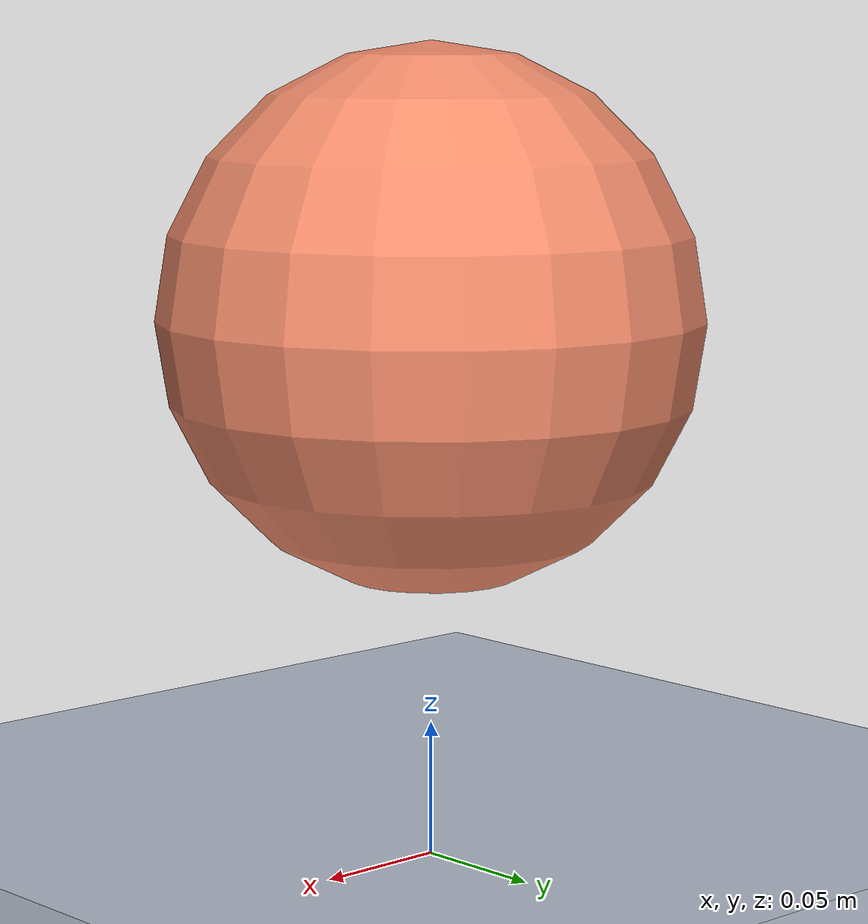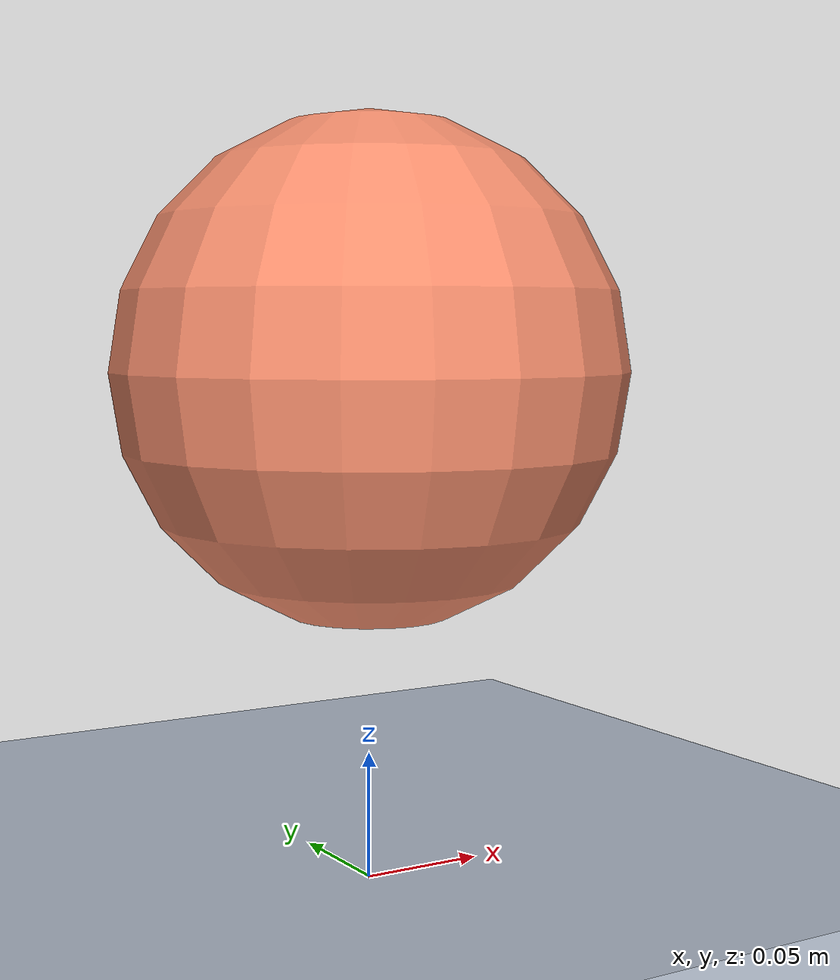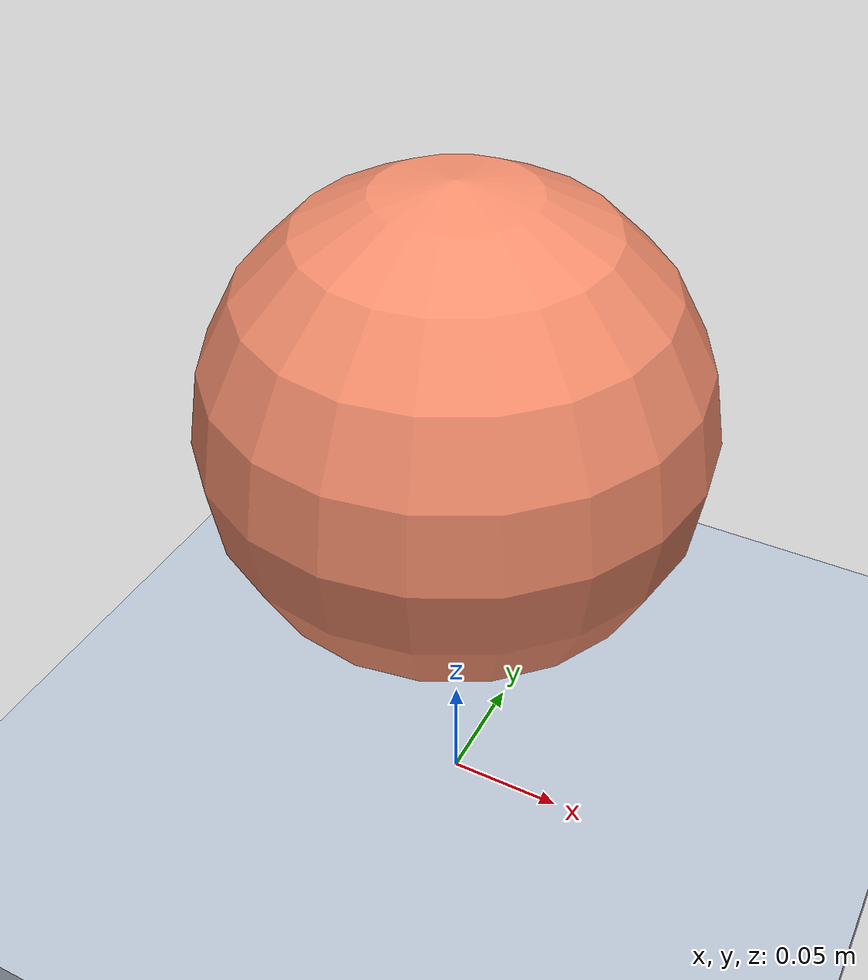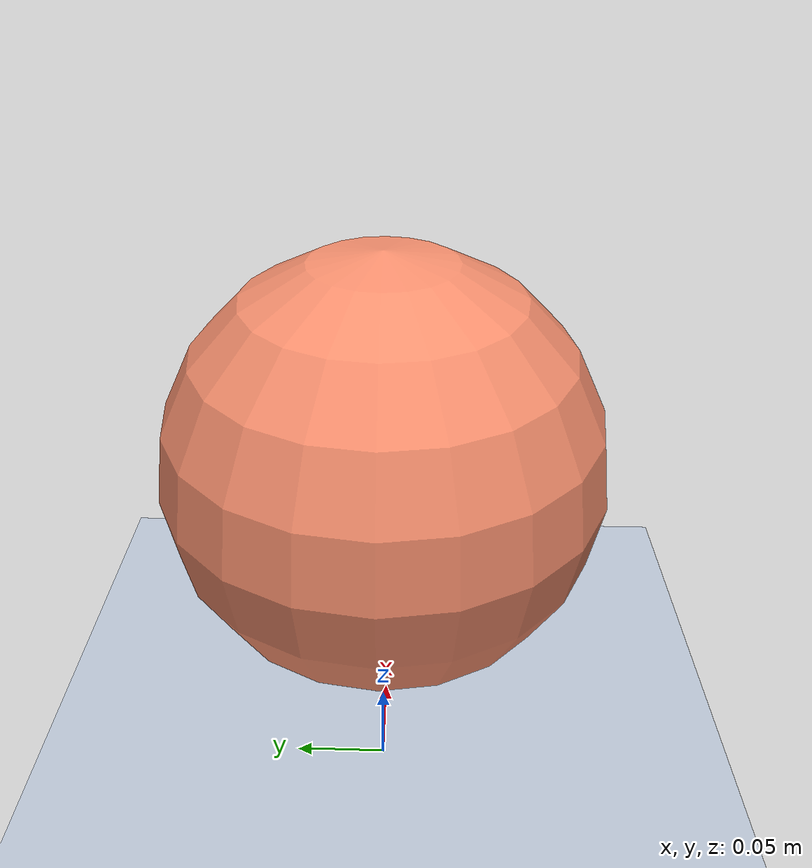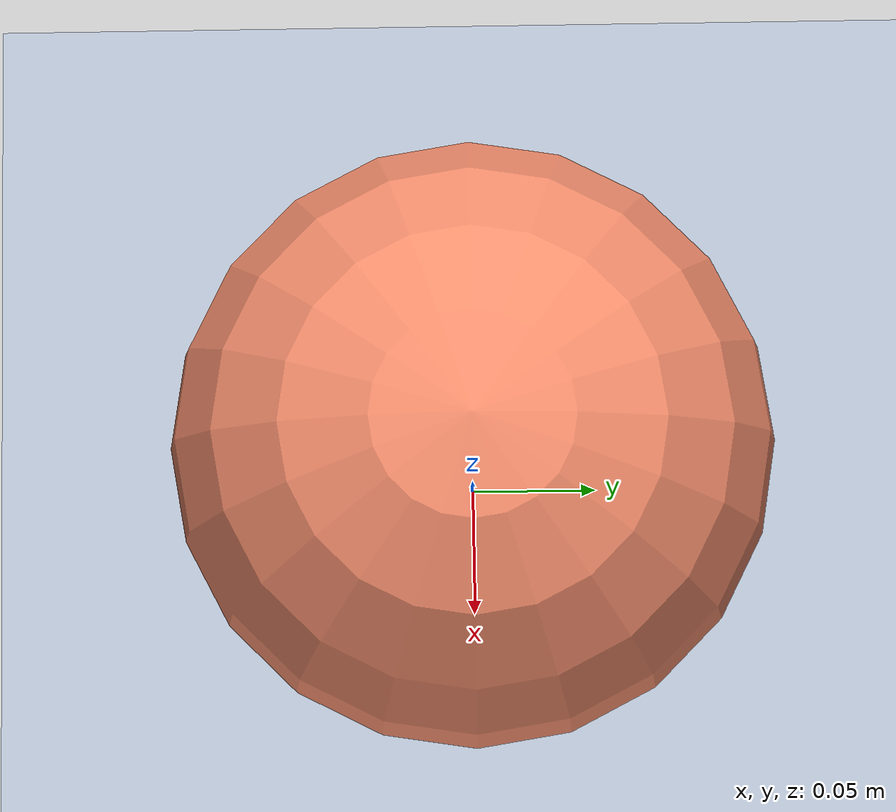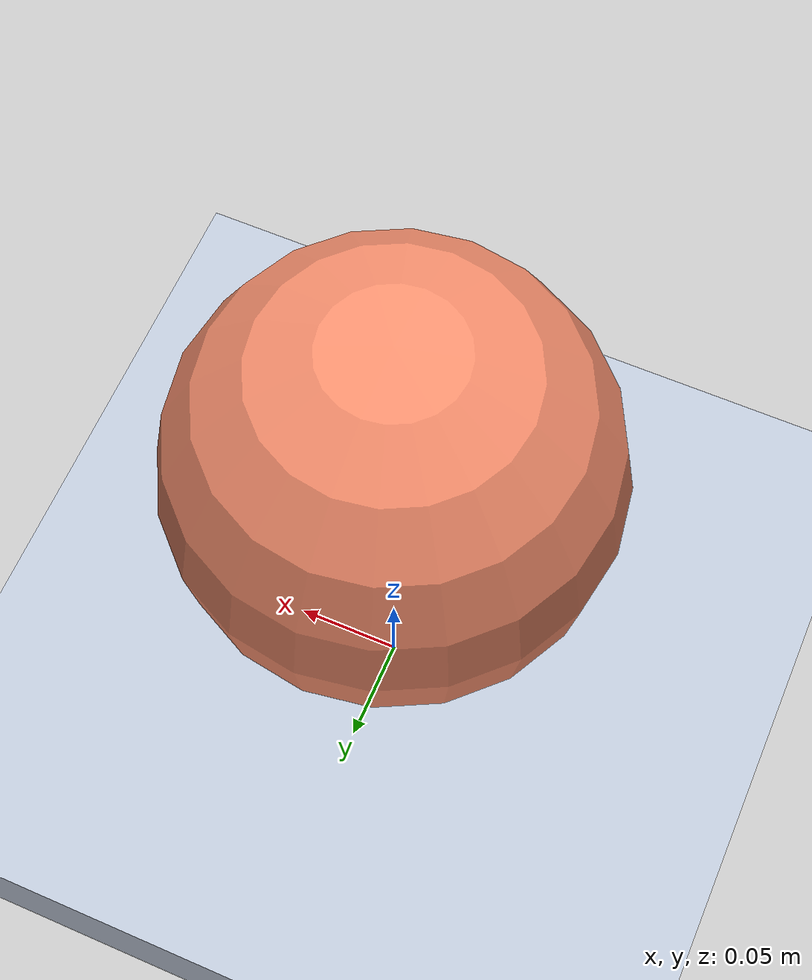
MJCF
<mujoco model="ball_drop">
  <option timestep="0.005" solver="Newton" iterations="10" gravity="0 0 -9.81"/>

  <visual>
    <global offwidth="1280" offheight="900"/>
    <headlight ambient="0.35 0.35 0.35" diffuse="0.65 0.65 0.65" specular="0.1 0.1 0.1"/>
  </visual>

  <asset>
    <texture name="checker" type="2d" builtin="checker"
             width="512" height="512"
             rgb1="0.92 0.92 0.88" rgb2="0.68 0.72 0.76"/>
    <material name="checker_mat" texture="checker" texrepeat="10 10" reflectance="0.15"/>
  </asset>

  <worldbody>
    <light name="key_light" pos="0.4 -0.6 1.2" dir="-0.4 0.6 -1"/>
    <geom name="floor"
          type="plane"
          pos="0 0 -0.025"
          size="1.2 1.2 0.01"
          contype="0"
          conaffinity="0"
          material="checker_mat"/>

    <geom name="plate"
          type="box"
          pos="0 0 0"
          size="0.5 0.5 0.025"
          rgba="0.72 0.76 0.82 1"/>

    <body name="ball" pos="0 0 0.2">
      <joint name="z_slide" type="slide" axis="0 0 1"/>
      <geom name="ball_geom"
            type="sphere"
            size="0.1"
            mass="1"
            rgba="0.95 0.55 0.42 1"/>
    </body>
  </worldbody>
</mujoco>
